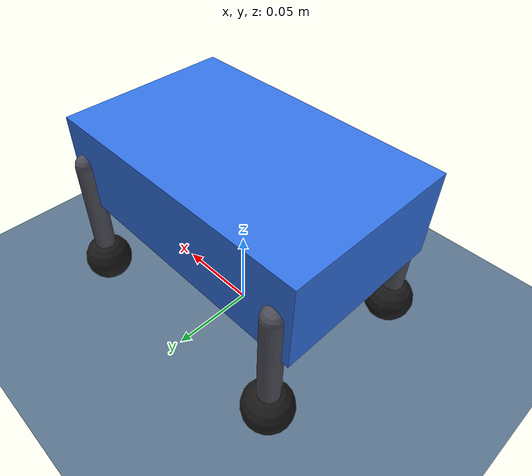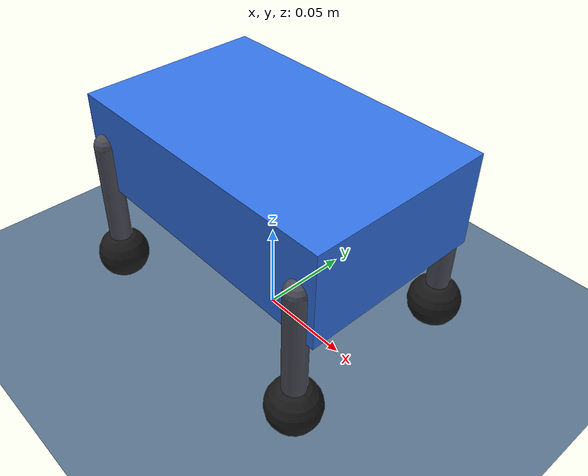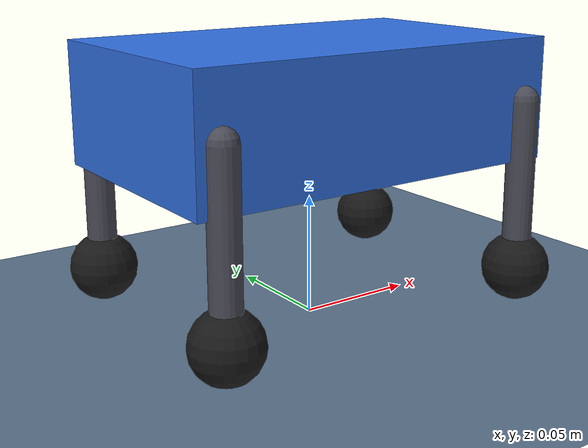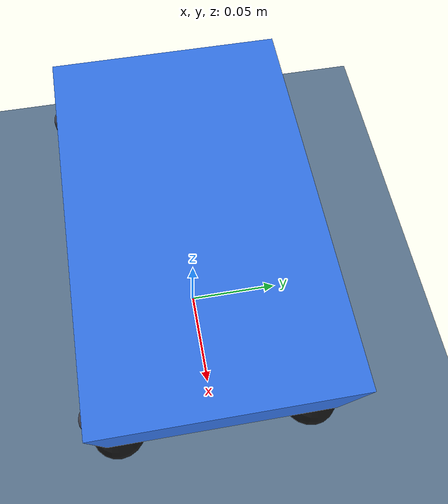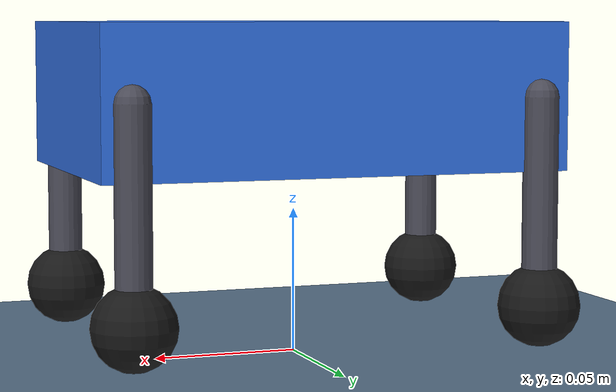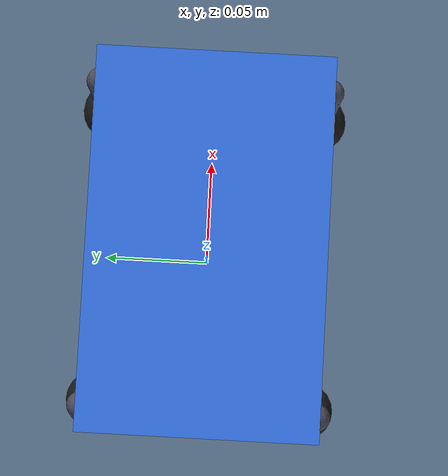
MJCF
<mujoco model="lego_quad_cpu">
  <compiler angle="radian" autolimits="true"/>
  <option timestep="0.004" integrator="implicitfast"/>
  <default>
    <default class="crank">
      <joint type="hinge" axis="0 1 0" damping="0.02" armature="0.002"/>
      <velocity kv="0.5" forcerange="-0.4 0.4" ctrlrange="-12 12"/>
    </default>
  </default>
  <worldbody>
    <light pos="0 0 1.2" dir="0 0 -1" diffuse="0.8 0.8 0.8"/>
    <geom name="floor" type="plane" size="0 0 0.1" friction="1.2 0.02 0.001" rgba="0.35 0.45 0.55 1"/>
    <body name="trunk" pos="0 0 0.09" childclass="crank">
      <freejoint name="root"/>
      <geom name="trunk" type="box" size="0.08 0.05 0.025" mass="0.22" rgba="0.2 0.45 0.9 1"/>
      <body name="FL" pos="0.07 0.05 0">
        <joint name="FL_crank"/>
        <geom name="FL_link" type="capsule" size="0.006" fromto="0 0 0 0 0 -0.07" mass="0.02" rgba="0.3 0.3 0.35 1"/>
        <geom name="FL_foot" type="sphere" size="0.014" pos="0 0 -0.07" mass="0.01" friction="1.2 0.02 0.001" rgba="0.1 0.1 0.1 1"/>
      </body>
      <body name="FR" pos="0.07 -0.05 0">
        <joint name="FR_crank"/>
        <geom name="FR_link" type="capsule" size="0.006" fromto="0 0 0 0 0 -0.07" mass="0.02" rgba="0.3 0.3 0.35 1"/>
        <geom name="FR_foot" type="sphere" size="0.014" pos="0 0 -0.07" mass="0.01" friction="1.2 0.02 0.001" rgba="0.1 0.1 0.1 1"/>
      </body>
      <body name="HL" pos="-0.07 0.05 0">
        <joint name="HL_crank"/>
        <geom name="HL_link" type="capsule" size="0.006" fromto="0 0 0 0 0 -0.07" mass="0.02" rgba="0.3 0.3 0.35 1"/>
        <geom name="HL_foot" type="sphere" size="0.014" pos="0 0 -0.07" mass="0.01" friction="1.2 0.02 0.001" rgba="0.1 0.1 0.1 1"/>
      </body>
      <body name="HR" pos="-0.07 -0.05 0">
        <joint name="HR_crank"/>
        <geom name="HR_link" type="capsule" size="0.006" fromto="0 0 0 0 0 -0.07" mass="0.02" rgba="0.3 0.3 0.35 1"/>
        <geom name="HR_foot" type="sphere" size="0.014" pos="0 0 -0.07" mass="0.01" friction="1.2 0.02 0.001" rgba="0.1 0.1 0.1 1"/>
      </body>
    </body>
  </worldbody>
  <actuator>
    <velocity class="crank" name="FL_crank" joint="FL_crank"/>
    <velocity class="crank" name="FR_crank" joint="FR_crank"/>
    <velocity class="crank" name="HL_crank" joint="HL_crank"/>
    <velocity class="crank" name="HR_crank" joint="HR_crank"/>
  </actuator>
</mujoco>
